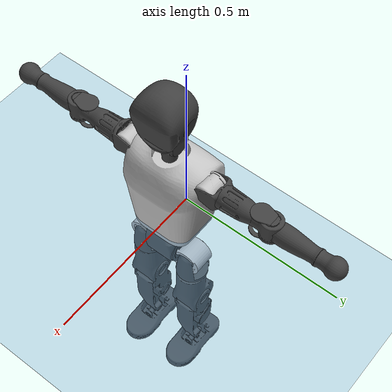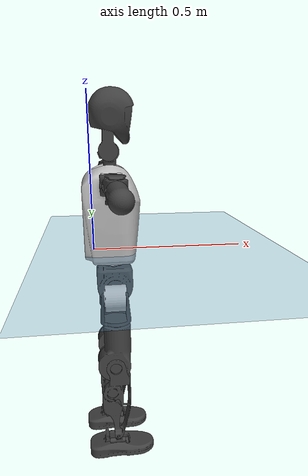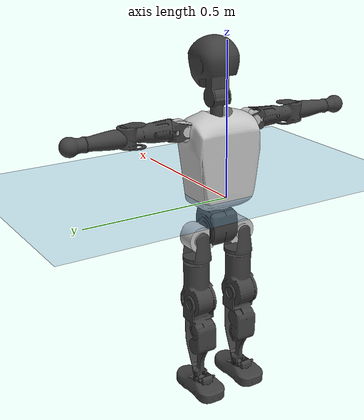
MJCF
<mujoco model="T1">
  <compiler angle="radian" assetdir="assets" balanceinertia="true" inertiafromgeom="false"/>

  <option timestep="0.005" density="1.2" viscosity="2e-05"/>

  <size nkey="1"/>

  <visual>
    <quality shadowsize="8192"/>
    <map shadowclip="0.5"/>
  </visual>

  <default>
    <default class="/">
      <joint armature="0.01" damping="0.01" frictionloss="0.1"/>
      <geom contype="0" conaffinity="0" group="1" solref="-1000 -80"/>
      <site size="0.01 0.005 0.005" group="5"/>
      <general forcelimited="true" biastype="affine" gainprm="25" biasprm="0 -25 -0.6"/>
      <default class="t1">
        <geom rgba="0.25 0.25 0.25 1"/>
        <default class="visual">
          <geom type="mesh" group="2"/>
        </default>
        <default class="collision">
          <geom group="3"/>
        </default>
        <default class="foot">
          <geom size="0.1115 0.05 0.015" type="box" condim="6" group="4" priority="1" solimp="0.015 1 0.015"/>
        </default>
        <default class="reward_collision_sphere">
          <geom group="5" rgba="1 0 0 1"/>
        </default>
      </default>
    </default>
  </default>

  <asset>
    <texture type="skybox" colorspace="auto" name="//unnamed_texture_0" builtin="gradient" rgb1="0.95 0.95 0.95" rgb2="0.95 0.95 0.95" width="100" height="600"/>
    <texture type="2d" colorspace="auto" name="texplane" builtin="checker" rgb1="0.345 0.575 0.748" rgb2="0.345 0.575 0.748" markrgb="1 1 1" width="512" height="512"/>
    <material name="MatPlane" class="/" texture="texplane" texuniform="true" texrepeat="2 2" specular="0.9"/>
    <mesh name="Trunk" class="/" file="Trunk.stl"/>
    <mesh name="H1" class="/" file="H1.stl"/>
    <mesh name="H2" class="/" file="H2.stl"/>
    <mesh name="AL1" class="/" file="AL1.stl"/>
    <mesh name="AL2" class="/" file="AL2.stl"/>
    <mesh name="AL3" class="/" file="AL3.stl"/>
    <mesh name="left_hand_link" class="/" file="left_hand_link.stl"/>
    <mesh name="AR1" class="/" file="AR1.stl"/>
    <mesh name="AR2" class="/" file="AR2.stl"/>
    <mesh name="AR3" class="/" file="AR3.stl"/>
    <mesh name="right_hand_link" class="/" file="right_hand_link.stl"/>
    <mesh name="Waist" class="/" file="Waist.stl"/>
    <mesh name="Hip_Pitch_Left" class="/" file="Hip_Pitch_Left.stl"/>
    <mesh name="Hip_Roll_Left" class="/" file="Hip_Roll_Left.stl"/>
    <mesh name="Hip_Yaw_Left" class="/" file="Hip_Yaw_Left.stl"/>
    <mesh name="Shank_Left" class="/" file="Shank_Left.stl"/>
    <mesh name="Ankle_Cross_Left" class="/" file="Ankle_Cross_Left.stl"/>
    <mesh name="left_foot_link" class="/" file="left_foot_link.stl"/>
    <mesh name="Hip_Pitch_Right" class="/" file="Hip_Pitch_Right.stl"/>
    <mesh name="Hip_Roll_Right" class="/" file="Hip_Roll_Right.stl"/>
    <mesh name="Hip_Yaw_Right" class="/" file="Hip_Yaw_Right.stl"/>
    <mesh name="Shank_Right" class="/" file="Shank_Right.stl"/>
    <mesh name="Ankle_Cross_Right" class="/" file="Ankle_Cross_Right.stl"/>
    <mesh name="right_foot_link" class="/" file="right_foot_link.stl"/>
  </asset>

  <worldbody>
    <geom name="floor" class="/" size="100 100 0.125" type="plane" group="0" material="MatPlane"/>
    <light name="toplight_shadow" class="/" pos="0 0 5" dir="0.0990148 0.0990148 -0.990148" type="directional" ambient="0.04 0.04 0.04" diffuse="0.55 0.55 0.55" specular="0.12 0.12 0.12"/>
    <light name="toplight_fill" class="/" pos="0 0 5" dir="0.0990148 0.0990148 -0.990148" type="directional" castshadow="false" ambient="0.04 0.04 0.04" diffuse="0.3 0.3 0.3" specular="0.08 0.08 0.08"/>
    <body name="trunk" childclass="t1" pos="-3.65204e-05 -0.00279802 -0.000980934" quat="0.999999 -0.000146456 0.000581687 0.00106909">
      <inertial pos="0.0556861 -0.00278362 0.111194" quat="0.999962 0.00838356 -0.000295668 -0.00215835" mass="10.1211" diaginertia="0.1112 0.0210995 0.0735825"/>
      <joint name="//unnamed_joint_0" type="free" armature="0" damping="0" frictionloss="0"/>
      <geom name="//unnamed_geom_1" class="visual" rgba="0.76 0.76 0.76 1" mesh="Trunk"/>
      <geom name="//unnamed_geom_2" class="collision" size="0.0716802 0.0955736 0.14336" pos="0.0622116 0 0.126707" type="box"/>
      <geom name="//unnamed_geom_3" class="reward_collision_sphere" size="0.10991" pos="0.0622116 0 0.105589"/>
      <geom name="//unnamed_geom_4" class="reward_collision_sphere" size="0.014336" pos="0.0622116 0.0658287 0"/>
      <geom name="//unnamed_geom_5" class="reward_collision_sphere" size="0.014336" pos="0.0622116 -0.0658287 0"/>
      <geom name="//unnamed_geom_6" class="reward_collision_sphere" size="0.014336" pos="0.0622116 0.0828667 0.190061"/>
      <geom name="//unnamed_geom_7" class="reward_collision_sphere" size="0.014336" pos="0.0622116 -0.0828667 0.190061"/>
      <site name="imu" pos="0.0127937 0.00071101 -0.0130008" size="0.00955736"/>
      <camera name="track" pos="0 -1.54891 0" quat="0.707107 0.707107 0 0" mode="trackcom"/>
      <camera name="ego_camera" pos="0.126497 0 0.443475" quat="-0.5 -0.5 0.5 0.5"/>
      <body name="H1" pos="0.0620668 -0.000861006 0.255648" quat="1 -0.000181653 0.000188564 -7.50739e-05">
        <inertial pos="-0.000928862 -0.000648352 0.0605724" quat="0.76453 -0.0145524 0.00200269 0.64442" mass="0.389221" diaginertia="0.000282504 6.4345e-05 0.000196539"/>
        <joint name="AAHead_yaw" pos="0 0 0" axis="0.000312487 -0.00220097 0.999998" stiffness="0.00815977" range="-1.51701 1.55177" armature="0.0100735" damping="0.00543924" frictionloss="0.102236"/>
        <geom name="//unnamed_geom_8" class="visual" mesh="H1"/>
        <body name="H2" pos="-0.00378997 0.000167127 0.0638209" quat="0.999999 -0.000109745 0.00124579 0.000350131">
          <inertial pos="0.00957906 -0.00132958 0.103784" quat="0.988818 0.102216 -0.0816479 -0.0715894" mass="0.562035" diaginertia="0.00239259 0.000527485 0.00224256"/>
          <joint name="Head_pitch" pos="0 0 0" axis="-0.00331078 -0.999957 -0.00871945" stiffness="0.000583145" range="-1.23193 0.327749" armature="0.0109834" damping="0" frictionloss="0.0941283"/>
          <geom name="//unnamed_geom_9" class="visual" mesh="H2"/>
          <geom name="//unnamed_geom_10" class="collision" size="0.0764589" pos="0.0103686 0 0.116148"/>
          <geom name="//unnamed_geom_11" class="reward_collision_sphere" size="0.0860163" pos="0.0207372 0 0.105589"/>
        </body>
      </body>
      <body name="AL1" pos="0.0615966 0.0818204 0.230224" quat="1 -0.000118085 0.000449296 0.000384957">
        <inertial pos="-0.0038571 0.0337708 0.000799186" quat="0.50486 0.496219 -0.503371 0.49548" mass="0.445423" diaginertia="0.00158386 0.000344653 0.000362084"/>
        <joint name="Left_Shoulder_Pitch" pos="0 0 0" axis="-0.0145438 0.999891 -0.00252661" range="-3.3612 1.2362" armature="0.00960574" damping="0.00267245" frictionloss="0.108958"/>
        <geom name="//unnamed_geom_12" class="visual" rgba="0.76 0.76 0.76 1" mesh="AL1"/>
        <body name="AL2" pos="-0.000490607 0.0401585 0.00186836" quat="1 -9.11347e-06 6.18937e-06 3.60652e-06">
          <inertial pos="0.00162011 0.0306481 -0.0029504" quat="0.487986 0.511851 -0.488157 0.51145" mass="0.145993" diaginertia="0.00049195 0.000100582 0.000231461"/>
          <joint name="Left_Shoulder_Roll" pos="0 0 0" axis="-1 0.000440616 -0.000195222" range="-1.51849 1.72532" armature="0.00998526" damping="0" frictionloss="0.095047"/>
          <geom name="//unnamed_geom_13" class="visual" mesh="AL2"/>
          <body name="AL3" pos="0.00295693 0.0474744 0.00335406" quat="1 -0.0001823 0.000222114 0.000401961">
            <inertial pos="0.00133689 0.0650676 0.00179948" quat="0.706917 0.707156 0.0112096 -0.00856837" mass="0.851973" diaginertia="0.0153445 0.00341905 0.000767804"/>
            <joint name="Left_Elbow_Pitch" pos="0 0 0" axis="-0.0136145 -0.99989 -0.00585176" range="-2.28482 2.21799" armature="0.00934357" damping="0.00892465" frictionloss="0.0999523"/>
            <geom name="//unnamed_geom_14" class="visual" mesh="AL3"/>
            <geom name="//unnamed_geom_15" class="collision" size="0.0286721 0.0716802" pos="0 0.0387228 0" quat="0.707105 0.707108 0 0" type="cylinder"/>
            <geom name="//unnamed_geom_16" class="reward_collision_sphere" size="0.0344065"/>
            <body name="left_hand_link" pos="-0.000702367 0.114861 -0.0019053" quat="1 0.000104857 -0.000357085 -4.60747e-05">
              <inertial pos="-0.00071817 0.0876519 -0.00040843" quat="0.70825 0.705937 0.00135536 0.00573012" mass="0.285814" diaginertia="0.00957384 0.0023349 0.000287112"/>
              <joint name="Left_Elbow_Yaw" pos="0 0 0" axis="0.00215074 0.000434609 0.999998" range="-2.4305 -0.00499794" armature="0.00964056" damping="0.025376" frictionloss="0.0929202"/>
              <geom name="//unnamed_geom_17" class="visual" mesh="left_hand_link"/>
              <geom name="//unnamed_geom_18" class="collision" size="0.0286721 0.0836269" pos="0 0.100679 0" quat="0.707105 0.707108 0 0" type="cylinder"/>
              <geom name="//unnamed_geom_19" class="reward_collision_sphere" size="0.0477868"/>
              <geom name="//unnamed_geom_20" class="reward_collision_sphere" size="0.0334508" pos="0 0.0851901 0"/>
              <geom name="//unnamed_geom_21" class="reward_collision_sphere" size="0.0334508" pos="0 0.166508 0"/>
            </body>
          </body>
        </body>
      </body>
      <body name="AR1" pos="0.0614666 -0.082666 0.231552" quat="0.999999 -0.00042124 0.00161302 -0.000181904">
        <inertial pos="-0.00342751 -0.0347583 -0.00106379" quat="0.497236 0.504373 -0.497446 0.500911" mass="0.46261" diaginertia="0.00154456 0.00035634 0.000386861"/>
        <joint name="Right_Shoulder_Pitch" pos="0 0 0" axis="-0.0105932 -0.999939 0.00313536" range="-1.2299 3.253" armature="0.0104152" damping="0" frictionloss="0.0824222"/>
        <geom name="//unnamed_geom_22" class="visual" rgba="0.76 0.76 0.76 1" mesh="AR1"/>
        <body name="AR2" pos="0.000199732 -0.0324895 -0.00272573" quat="1 -4.55961e-05 -0.000451265 0.000610139">
          <inertial pos="0.00134249 -0.0306397 -0.00118819" quat="0.510792 0.477706 -0.514872 0.495778" mass="0.137677" diaginertia="0.000482607 9.80515e-05 0.000229321"/>
          <joint name="Right_Shoulder_Roll" pos="0 0 0" axis="-0.999962 -0.00806941 0.0034462" range="-1.69063 1.61696" armature="0.0094287" damping="0.0178235" frictionloss="0.094815"/>
          <geom name="//unnamed_geom_23" class="visual" mesh="AR2"/>
          <body name="AR3" pos="0.00254662 -0.0448759 0.000184355" quat="1 -1.12661e-05 7.86119e-06 -5.24638e-06">
            <inertial pos="-0.00143476 -0.0674812 -0.00225605" quat="0.711561 0.702591 -0.000151571 0.00678845" mass="0.892747" diaginertia="0.0155029 0.00353025 0.000836279"/>
            <joint name="Right_Elbow_Pitch" pos="0 0 0" axis="0.00491754 0.99997 -0.00606439" stiffness="0.00839783" range="-2.30174 2.21301" armature="0.00885724" damping="0.00795868" frictionloss="0.108622"/>
            <geom name="//unnamed_geom_24" class="visual" mesh="AR3"/>
            <geom name="//unnamed_geom_25" class="collision" size="0.0286721 0.0716802" pos="0 -0.0387228 0" quat="0.707105 0.707108 0 0" type="cylinder"/>
            <geom name="//unnamed_geom_26" class="reward_collision_sphere" size="0.0344065"/>
            <body name="right_hand_link" pos="5.14406e-05 -0.113476 0.00191422" quat="0.999999 0.000436017 -0.000166959 -0.000950943">
              <inertial pos="-0.00141148 -0.0877234 0.00198624" quat="0.706205 0.708008 -0.000122641 0.000434345" mass="0.275114" diaginertia="0.00952722 0.00216106 0.00027292"/>
              <joint name="Right_Elbow_Yaw" pos="0 0 0" axis="-0.000812118 0.0100662 0.999949" range="0.0197796 2.49592" armature="0.0104194" damping="0.00505837" frictionloss="0.10747"/>
              <geom name="//unnamed_geom_27" class="visual" mesh="right_hand_link"/>
              <geom name="//unnamed_geom_28" class="collision" size="0.0286721 0.0836269" pos="0 -0.100679 0" quat="0.707105 0.707108 0 0" type="cylinder"/>
              <geom name="//unnamed_geom_29" class="reward_collision_sphere" size="0.0477868"/>
              <geom name="//unnamed_geom_30" class="reward_collision_sphere" size="0.0334508" pos="0 -0.0851901 0"/>
              <geom name="//unnamed_geom_31" class="reward_collision_sphere" size="0.0334508" pos="0 -0.166508 0"/>
            </body>
          </body>
        </body>
      </body>
      <body name="Waist" pos="0.0648552 -0.00351701 -0.121317" quat="1 -0.000446637 -0.000123023 0.000276245">
        <inertial pos="0.00115242 -0.00176561 0.00805782" quat="0.982443 0.00403388 -0.186521 -0.000370194" mass="2.25735" diaginertia="0.00642427 0.00149409 0.00619784"/>
        <joint name="Waist" pos="0 0 0" axis="0.00547095 -0.0041637 0.999976" range="-1.56302 1.53999" armature="0.009" damping="0.0227245" frictionloss="0.103886"/>
        <geom name="//unnamed_geom_32" class="visual" mesh="Waist"/>
        <body name="Hip_Pitch_Left" pos="0.00060546 0.0800975 -0.000763627" quat="0.999999 -0.000240422 0.000278179 0.00108825">
          <inertial pos="0.00129837 -0.00881724 -0.0181338" quat="0.976011 0.217416 0.0114619 0.00141387" mass="0.910545" diaginertia="0.00216475 0.000407476 0.00167886"/>
          <joint name="Left_Hip_Pitch" pos="0 0 0" axis="-5.5416e-05 1 0.000272193" range="-1.78746 1.58423" armature="0.0107872" damping="0.00189556" frictionloss="0.0996118"/>
          <geom name="//unnamed_geom_33" class="visual" rgba="0.76 0.76 0.76 1" mesh="Hip_Pitch_Left"/>
          <body name="Hip_Roll_Left" pos="-0.00090976 -0.000839995 -0.0198494" quat="1 0.000102383 8.45423e-05 2.4395e-05">
            <inertial pos="-0.00102217 -0.000262984 -0.056314" quat="0.7022 0.000744283 -0.00411997 0.711967" mass="0.331258" diaginertia="0.00211443 0.000415416 0.000673835"/>
            <joint name="Left_Hip_Roll" pos="0 0 0" axis="-0.999998 -0.00106003 -0.00138455" stiffness="0.00239016" range="-1.51682 0.212673" armature="0.00827464" damping="0.0134835" frictionloss="0.0928915"/>
            <geom name="//unnamed_geom_34" class="visual" mesh="Hip_Roll_Left"/>
            <geom name="//unnamed_geom_35" class="reward_collision_sphere" size="0.0525655"/>
            <body name="Hip_Yaw_Left" pos="0.00382788 -0.000700249 -0.090237" quat="1 3.71507e-05 -0.000144113 9.81931e-05">
              <inertial pos="-0.00838638 0.000893468 -0.0944886" quat="0.698055 -0.0338758 -0.0352383 0.714374" mass="1.80003" diaginertia="0.0311465 0.00693524 0.00333981"/>
              <joint name="Left_Hip_Yaw" pos="0 0 0" axis="0.000249585 -0.00328358 -0.999995" stiffness="0.000693406" range="-1.05976 1.01324" armature="0.00956918" damping="0.0224259" frictionloss="0.0916453"/>
              <geom name="//unnamed_geom_36" class="visual" mesh="Hip_Yaw_Left"/>
              <geom name="//unnamed_geom_37" class="collision" size="0.0477868 0.0764589" type="cylinder"/>
              <body name="Shank_Left" pos="-0.0153344 -0.00180083 -0.144151" quat="1 0.000212964 0.000406843 -0.000346148">
                <inertial pos="-0.00828927 -0.00170906 -0.130392" quat="0.998147 0.000164244 -0.0252093 0.0553834" mass="1.61813" diaginertia="0.0429626 0.0100435 0.00248659"/>
                <joint name="Left_Knee_Pitch" pos="0 0 0" axis="0.00287097 0.999992 0.00281945" stiffness="0.00524526" range="0.0412528 2.2828" armature="0.0102211" damping="0" frictionloss="0.0898771"/>
                <geom name="//unnamed_geom_38" class="visual" mesh="Shank_Left"/>
                <geom name="//unnamed_geom_39" class="collision" size="0.0477868 0.0716802" pos="0 0 -0.126707" type="cylinder"/>
                <geom name="//unnamed_geom_40" class="reward_collision_sphere" size="0.0621229"/>
                <body name="Ankle_Cross_Left" pos="0.000341172 0.00196392 -0.298232" quat="1 0.000353462 -0.000607248 -3.7649e-05">
                  <inertial pos="-0.00650566 -4.18081e-05 -0.00807194" quat="0.445462 0.545945 0.559372 0.43659" mass="0.0643395" diaginertia="3.53334e-05 7.39578e-06 1.555e-05"/>
                  <joint name="Left_Ankle_Pitch" pos="0 0 0" axis="-0.00844191 0.999931 0.00813265" range="-0.865914 0.386402" armature="0.00843189" damping="0.0137602" frictionloss="0.0915624"/>
                  <geom name="//unnamed_geom_41" class="visual" mesh="Ankle_Cross_Left"/>
                  <body name="left_foot_link" pos="-0.00220698 -0.00100166 -0.0146731" quat="1 -0.000113196 -0.000118193 9.72609e-06">
                    <inertial pos="0.00121751 0.00130248 -0.00955202" quat="-0.00564017 0.618738 -0.00120128 0.785576" mass="0.583064" diaginertia="0.0031528 0.000657073 0.00274425"/>
                    <joint name="Left_Ankle_Roll" pos="0 0 0" axis="-0.999989 0.0045317 0.00112147" range="-0.43324 0.432978" armature="0.00875331" damping="0" frictionloss="0.0972476"/>
                    <geom name="//unnamed_geom_42" class="visual" mesh="left_foot_link"/>
                    <geom name="left_foot" class="foot" size="0.0748968 0.0442867 0.015644" pos="0.0103686 0 -0.0158384"/>
                    <geom name="//unnamed_geom_44" class="reward_collision_sphere" size="0.0496983" pos="0.0103686 0 -0.0158384"/>
                    <geom name="//unnamed_geom_45" class="reward_collision_sphere" size="0.0286721" pos="0.0985018 -0.0178125 -0.0158384"/>
                    <geom name="//unnamed_geom_46" class="reward_collision_sphere" size="0.0286721" pos="-0.0725802 -0.0178125 -0.0158384"/>
                    <site name="left_foot" class="foot" pos="0.0103686 0 -0.0158384" size="0.00955736"/>
                  </body>
                </body>
              </body>
            </body>
          </body>
        </body>
        <body name="Hip_Pitch_Right" pos="-0.0024438 -0.0803877 -0.00219094" quat="1 8.97453e-05 8.35344e-06 3.7573e-05">
          <inertial pos="0.000179237 0.00634701 -0.0183677" quat="0.974004 -0.225285 0.0226836 0.00695456" mass="0.910496" diaginertia="0.00213981 0.000397284 0.00157651"/>
          <joint name="Right_Hip_Pitch" pos="0 0 0" axis="0.00403074 -0.999991 -0.00145186" range="-1.62302 1.81457" armature="0.00825886" damping="0.00131712" frictionloss="0.0984539"/>
          <geom name="//unnamed_geom_47" class="visual" rgba="0.76 0.76 0.76 1" mesh="Hip_Pitch_Right"/>
          <body name="Hip_Roll_Right" pos="0.000400417 -0.00353226 -0.023597" quat="1 0.00018009 -0.0001731 0.000243588">
            <inertial pos="-2.42957e-05 0.000184492 -0.0572428" quat="0.703092 0.00123864 -0.015695 0.710924" mass="0.34778" diaginertia="0.00216502 0.000431048 0.000687128"/>
            <joint name="Right_Hip_Roll" pos="0 0 0" axis="-0.999999 -0.000931684 0.000368049" range="-0.18662 1.55817" armature="0.0108381" damping="0.00563553" frictionloss="0.0935319"/>
            <geom name="//unnamed_geom_48" class="visual" mesh="Hip_Roll_Right"/>
            <geom name="//unnamed_geom_49" class="reward_collision_sphere" size="0.0525655"/>
            <body name="Hip_Yaw_Right" pos="0.00103334 -0.00359552 -0.0881496" quat="1 4.11189e-05 -0.000647158 0.000238448">
              <inertial pos="-0.0045643 -0.00262969 -0.0930524" quat="0.715342 -0.0319078 -0.0339048 0.697222" mass="1.93985" diaginertia="0.0317533 0.00711134 0.00338524"/>
              <joint name="Right_Hip_Yaw" pos="0 0 0" axis="-0.00140872 0.00128895 -0.999998" range="-1.02559 0.961491" armature="0.00964484" damping="0.0197067" frictionloss="0.100525"/>
              <geom name="//unnamed_geom_50" class="visual" mesh="Hip_Yaw_Right"/>
              <geom name="//unnamed_geom_51" class="collision" size="0.0477868 0.0764589" type="cylinder"/>
              <body name="Shank_Right" pos="-0.0102653 0.000235807 -0.140908" quat="1 -0.000359217 -0.000569198 -0.000165066">
                <inertial pos="-0.00653002 0.00251064 -0.12896" quat="0.999565 -0.00692113 -0.0205614 -0.0199796" mass="1.51645" diaginertia="0.0405896 0.0098365 0.0025673"/>
                <joint name="Right_Knee_Pitch" pos="0 0 0" axis="-0.00442944 -0.999973 -0.00591541" range="-2.30006 -0.046491" armature="0.00951136" damping="0.0199198" frictionloss="0.0842993"/>
                <geom name="//unnamed_geom_52" class="visual" mesh="Shank_Right"/>
                <geom name="//unnamed_geom_53" class="collision" size="0.0477868 0.0716802" pos="0 0 -0.126707" type="cylinder"/>
                <geom name="//unnamed_geom_54" class="reward_collision_sphere" size="0.0621229"/>
                <body name="Ankle_Cross_Right" pos="0.00352867 -0.00235459 -0.293909" quat="1 -1.10324e-05 6.94298e-05 -0.000145718">
                  <inertial pos="-0.00619003 -0.00161891 -0.00620275" quat="0.441183 0.562416 0.543508 0.44005" mass="0.0627777" diaginertia="3.53042e-05 7.12814e-06 1.44902e-05"/>
                  <joint name="Right_Ankle_Pitch" pos="0 0 0" axis="-0.0106519 -0.999936 -0.00369711" range="-0.38809 0.852476" armature="0.00911473" damping="0.0091921" frictionloss="0.0963412"/>
                  <geom name="//unnamed_geom_55" class="visual" mesh="Ankle_Cross_Right"/>
                  <body name="right_foot_link" pos="-0.000547746 -0.00194608 -0.0151024" quat="1 -0.000307624 -0.000222585 -0.000116223">
                    <inertial pos="0.000933597 0.00212703 -0.0116284" quat="-0.00387241 0.619932 -0.00482058 0.784631" mass="0.581557" diaginertia="0.00319294 0.000660803 0.00277149"/>
                    <joint name="Right_Ankle_Roll" pos="0 0 0" axis="-0.999945 -0.00855957 0.0060653" range="-0.446653 0.443269" armature="0.0104959" damping="0.0113122" frictionloss="0.0832512"/>
                    <geom name="//unnamed_geom_56" class="visual" mesh="right_foot_link"/>
                    <geom name="right_foot" class="foot" size="0.0660083 0.0424084 0.0149656" pos="0.0103686 0 -0.0158384"/>
                    <geom name="//unnamed_geom_58" class="reward_collision_sphere" size="0.0382294"/>
                    <geom name="//unnamed_geom_59" class="reward_collision_sphere" size="0.0286721" pos="0.0103686 0 -0.0158384"/>
                    <geom name="//unnamed_geom_60" class="reward_collision_sphere" size="0.0286721" pos="0.0985018 0.0178125 -0.0158384"/>
                    <geom name="//unnamed_geom_61" class="reward_collision_sphere" size="0.0286721" pos="-0.0725802 0.0178125 -0.0158384"/>
                    <site name="right_foot" class="foot" pos="0.0103686 0 -0.0158384" size="0.00955736"/>
                  </body>
                </body>
              </body>
            </body>
          </body>
        </body>
      </body>
    </body>
  </worldbody>

  <contact>
    <pair class="/" geom1="floor" geom2="left_foot" name="//unnamed_contact_0"/>
    <pair class="/" geom1="floor" geom2="right_foot" name="//unnamed_contact_1"/>
  </contact>

  <actuator>
    <general name="AAHead_yaw" class="/" joint="AAHead_yaw" forcerange="-6.00312 6.00312" gainprm="22.3835" biasprm="0 -22.3835 -0.517526"/>
    <general name="Head_pitch" class="/" joint="Head_pitch" forcerange="-7.35144 7.35144" gainprm="22.3835" biasprm="0 -22.3835 -0.517526"/>
    <general name="Left_Shoulder_Pitch" class="/" joint="Left_Shoulder_Pitch" forcerange="-16.8822 16.8822" gainprm="22.3835" biasprm="0 -22.3835 -0.517526"/>
    <general name="Left_Shoulder_Roll" class="/" joint="Left_Shoulder_Roll" forcerange="-18.2487 18.2487" gainprm="22.3835" biasprm="0 -22.3835 -0.517526"/>
    <general name="Left_Elbow_Pitch" class="/" joint="Left_Elbow_Pitch" forcerange="-17.7422 17.7422" gainprm="22.3835" biasprm="0 -22.3835 -0.517526"/>
    <general name="Left_Elbow_Yaw" class="/" joint="Left_Elbow_Yaw" forcerange="-16.5958 16.5958" gainprm="22.3835" biasprm="0 -22.3835 -0.517526"/>
    <general name="Right_Shoulder_Pitch" class="/" joint="Right_Shoulder_Pitch" forcerange="-17.3183 17.3183" gainprm="22.3835" biasprm="0 -22.3835 -0.517526"/>
    <general name="Right_Shoulder_Roll" class="/" joint="Right_Shoulder_Roll" forcerange="-15.8069 15.8069" gainprm="22.3835" biasprm="0 -22.3835 -0.517526"/>
    <general name="Right_Elbow_Pitch" class="/" joint="Right_Elbow_Pitch" forcerange="-18.0456 18.0456" gainprm="22.3835" biasprm="0 -22.3835 -0.517526"/>
    <general name="Right_Elbow_Yaw" class="/" joint="Right_Elbow_Yaw" forcerange="-16.3849 16.3849" gainprm="22.3835" biasprm="0 -22.3835 -0.517526"/>
    <general name="Waist" class="/" joint="Waist" forcerange="-27.083 27.083" gainprm="22.3835" biasprm="0 -22.3835 -0.517526"/>
    <general name="Left_Hip_Pitch" class="/" joint="Left_Hip_Pitch" forcerange="-39.8137 39.8137" gainprm="22.3835" biasprm="0 -22.3835 -0.517526"/>
    <general name="Left_Hip_Roll" class="/" joint="Left_Hip_Roll" forcerange="-29.4975 29.4975" gainprm="22.3835" biasprm="0 -22.3835 -0.517526"/>
    <general name="Left_Hip_Yaw" class="/" joint="Left_Hip_Yaw" forcerange="-27.9703 27.9703" gainprm="22.3835" biasprm="0 -22.3835 -0.517526"/>
    <general name="Left_Knee_Pitch" class="/" joint="Left_Knee_Pitch" forcerange="-52.7956 52.7956" gainprm="22.3835" biasprm="0 -22.3835 -0.517526"/>
    <general name="Left_Ankle_Pitch" class="/" joint="Left_Ankle_Pitch" forcerange="-19.2984 19.2984" gainprm="22.3835" biasprm="0 -22.3835 -0.517526"/>
    <general name="Left_Ankle_Roll" class="/" joint="Left_Ankle_Roll" forcerange="-14.5199 14.5199" gainprm="22.3835" biasprm="0 -22.3835 -0.517526"/>
    <general name="Right_Hip_Pitch" class="/" joint="Right_Hip_Pitch" forcerange="-43.7496 43.7496" gainprm="22.3835" biasprm="0 -22.3835 -0.517526"/>
    <general name="Right_Hip_Roll" class="/" joint="Right_Hip_Roll" forcerange="-26.4462 26.4462" gainprm="22.3835" biasprm="0 -22.3835 -0.517526"/>
    <general name="Right_Hip_Yaw" class="/" joint="Right_Hip_Yaw" forcerange="-29.7904 29.7904" gainprm="22.3835" biasprm="0 -22.3835 -0.517526"/>
    <general name="Right_Knee_Pitch" class="/" joint="Right_Knee_Pitch" forcerange="-60.277 60.277" gainprm="22.3835" biasprm="0 -22.3835 -0.517526"/>
    <general name="Right_Ankle_Pitch" class="/" joint="Right_Ankle_Pitch" forcerange="-18.7346 18.7346" gainprm="22.3835" biasprm="0 -22.3835 -0.517526"/>
    <general name="Right_Ankle_Roll" class="/" joint="Right_Ankle_Roll" forcerange="-14.1522 14.1522" gainprm="22.3835" biasprm="0 -22.3835 -0.517526"/>
  </actuator>

  <sensor>
    <gyro site="imu" name="imu_angular_velocity"/>
    <velocimeter site="imu" name="imu_linear_velocity"/>
    <framelinvel objtype="site" objname="left_foot" name="left_foot_global_linear_velocity"/>
    <framelinvel objtype="site" objname="right_foot" name="right_foot_global_linear_velocity"/>
  </sensor>

  <keyframe>
    <key name="home" qpos="0 0 0.6385 1 0 0 0 0 0 0 1.4 0 -0.4 0 -1.4 0 0.4 0 -0.4 0 0 0.8 -0.4 0 0.4 0 0 -0.8 0.4 0"/>
  </keyframe>
</mujoco>
